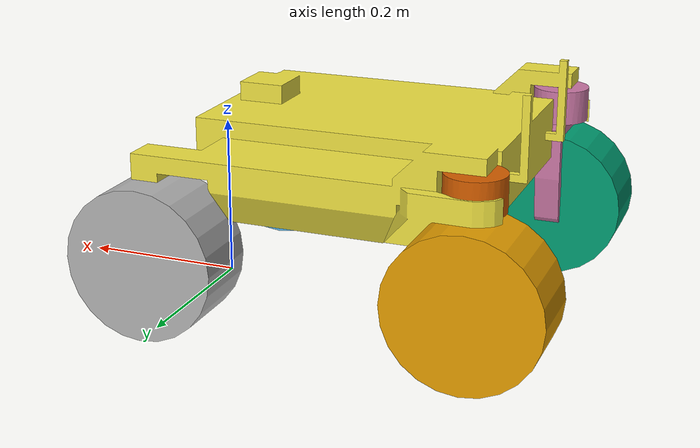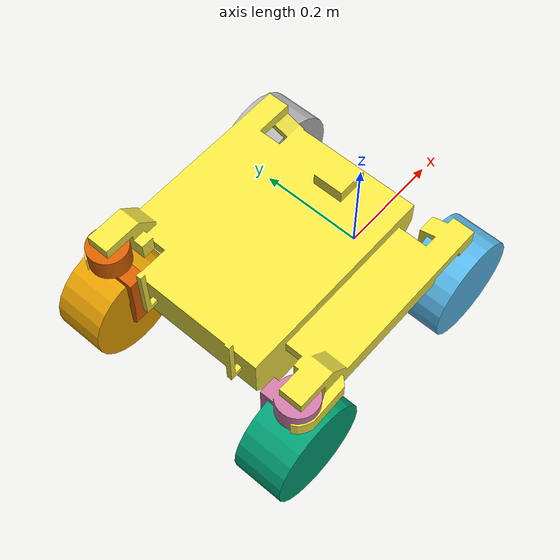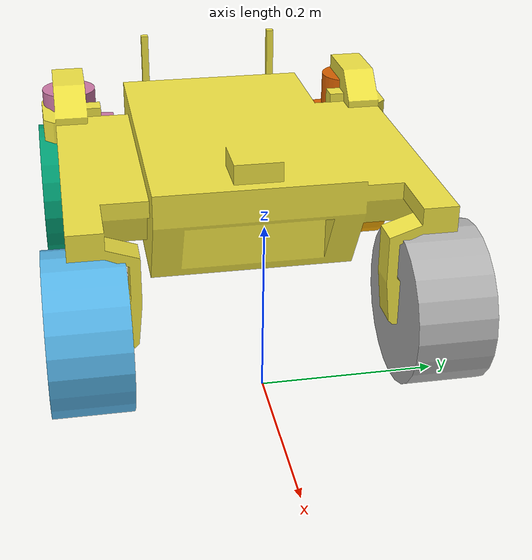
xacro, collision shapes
<?xml version="1.0"?>
<robot xmlns:xacro="http://ros.org/wiki/xacro"
       name="raph_sim">

  <xacro:arg name="fixed" default="false"/>
  <xacro:arg name="robot_ns" default=""/>

  <xacro:include filename="$(find raph_description)/urdf/raph_macros.xacro"/>

  <xacro:raph_sim robot_ns="$(arg robot_ns)"
                 fixed="$(arg fixed)"/>

</robot>

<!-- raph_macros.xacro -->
<robot xmlns:xacro="http://www.ros.org/wiki/xacro">

  <xacro:include filename="$(find raph_description)/urdf/include/oak_macro.xacro"/>
  <xacro:include filename="$(find raph_description)/urdf/include/laser_macro.xacro"/>

  <xacro:macro name="raph"
               params="footprint_link:=true
                       link_prefix:=''
                       joint_prefix:=''
                       imu_translation:='-0.128 0 -0.0393'">
    <!--TODO specify accurate imu translation-->

    <xacro:oak_camera parent="${link_prefix}base_link" base_frame="oak_base_frame" namespace="${link_prefix}">
      <origin xyz="-0.05642 0.0 -0.076218" rpy="0 0 0" />
    </xacro:oak_camera>

    <xacro:rplidar_s3 parent="${link_prefix}base_link" namespace="${link_prefix}">
      <origin xyz="-0.062106 0.0 0.011588" />
    </xacro:rplidar_s3>

    <xacro:macro name="servo_link" params="name">
      <link name="${link_prefix}servo_${name}_link">
        <inertial>
          <mass value="0.055"/>
          <origin xyz="0 0 0"/>
          <inertia
            ixx="0.000001" ixy="0.0" ixz="0.0"
            iyy="0.000001" iyz="0.0"
            izz="0.000001"/>
        </inertial>
        <visual>
          <origin xyz="0 0 0" rpy="0 0 ${pi/2}"/>
          <geometry>
            <mesh filename="package://raph_description/models/servo.dae"/>
          </geometry>
        </visual>
        <collision>
          <origin xyz="0 0 0" rpy="0 0 0"/>
          <geometry>
            <mesh filename="package://raph_description/models/servo_outline.stl"/>
          </geometry>
        </collision>
      </link>
    </xacro:macro>

    <xacro:macro name="wheel_link" params="name">
      <link name="${link_prefix}wheel_${name}_link">
        <inertial>
          <mass value="0.5"/>
          <origin xyz="0 0 0"/>
          <inertia
            ixx="0.002079" ixy="0.0" ixz="0.0"
            iyy="0.002079" iyz="0.0"
            izz="0.004158"/>
        </inertial>
        <visual>
          <origin xyz="0 0 0" rpy="0 0 ${pi/2}"/>
          <geometry>
            <mesh filename="package://raph_description/models/wheel.dae"/>
          </geometry>
        </visual>
        <collision>
          <origin xyz="0 0 0" rpy="${pi/2} 0 0"/>
          <geometry>
            <cylinder radius="0.091" length="0.088"/>
          </geometry>
        </collision>
      </link>
    </xacro:macro>

    <!-- LINKS -->
    <xacro:if value="${footprint_link}">
      <link name="${link_prefix}base_footprint"/>
    </xacro:if>

    <link name="${link_prefix}base_link">
      <inertial>
        <mass value="3.0"/>
        <origin xyz="-0.019662 0.011643 -0.031802"/>
        <inertia
          ixx="0.02" ixy="0.001177" ixz="-0.0008871"
          iyy="0.02" iyz="0.0002226"
          izz="0.03"/>
      </inertial>
      <visual>
        <origin xyz="-0.074211 0 -0.031076" rpy="0 0 ${pi/2}"/>
        <geometry>
          <mesh filename="package://raph_description/models/raph_base_link.dae"/>
        </geometry>
      </visual>
      <collision>
        <origin xyz="0 0 -0.031076" rpy="0 0 0"/>
        <geometry>
          <mesh filename="package://raph_description/models/raph_outline.stl"/>
        </geometry>
      </collision>
    </link>

    <link name="${link_prefix}mounting_plate_frame"/>

    <xacro:servo_link name="l"/>
    <xacro:servo_link name="r"/>

    <xacro:wheel_link name="fl"/>
    <xacro:wheel_link name="rl"/>
    <xacro:wheel_link name="fr"/>
    <xacro:wheel_link name="rr"/>

    <link name="${link_prefix}imu_frame"/>

    <!-- JOINTS -->

    <xacro:if value="${footprint_link}">
      <joint name="${joint_prefix}base_joint" type="fixed">
        <origin xyz="0 0 0.235756" rpy="0 0 0"/>
        <parent link="${link_prefix}base_footprint"/>
        <child link="${link_prefix}base_link"/>
      </joint>
    </xacro:if>

    <joint name="${joint_prefix}servo_l_joint" type="revolute">
      <origin xyz="-0.37943 0.1899 -0.022433" rpy="0 0 0"/>
      <parent link="${link_prefix}base_link"/>
      <child link="${link_prefix}servo_l_link"/>
      <axis xyz="0 0 -1"/>
      <limit effort="100.0" lower="-1.5708" upper="1.5708" velocity="100.0"/>
    </joint>

    <joint name="${joint_prefix}servo_r_joint" type="revolute">
      <origin xyz="-0.37943 -0.1899 -0.022433" rpy="0 0 ${pi}"/>
      <parent link="${link_prefix}base_link"/>
      <child link="${link_prefix}servo_r_link"/>
      <axis xyz="0 0 -1"/>
      <limit effort="100.0" lower="-1.5708" upper="1.5708" velocity="100.0"/>
    </joint>

    <joint name="${joint_prefix}wheel_fl_joint" type="continuous">
      <origin xyz="0 0.19402 -0.144756" rpy="0 0 0"/>
      <parent link="${link_prefix}base_link"/>
      <child link="${link_prefix}wheel_fl_link"/>
      <axis xyz="0 1 0"/>
      <limit effort="2.0" velocity="6.0"/>
      <dynamics friction="0.5" damping="0.2"/>
    </joint>

    <joint name="${joint_prefix}wheel_rl_joint" type="continuous">
      <origin xyz="0 0 -0.12392" rpy="0 0 0"/>
      <parent link="${link_prefix}servo_l_link"/>
      <child link="${link_prefix}wheel_rl_link"/>
      <axis xyz="0 1 0"/>
      <limit effort="2.0" velocity="6.0"/>
      <dynamics friction="0.5" damping="0.2"/>
    </joint>

    <joint name="${joint_prefix}wheel_fr_joint" type="continuous">
      <origin xyz="0 -0.19402 -0.144756" rpy="0 0 ${pi}"/>
      <parent link="${link_prefix}base_link"/>
      <child link="${link_prefix}wheel_fr_link"/>
      <axis xyz="0 -1 0"/>
      <limit effort="2.0" velocity="6.0"/>
      <dynamics friction="0.5" damping="0.2"/>
    </joint>

    <joint name="${joint_prefix}wheel_rr_joint" type="continuous">
      <origin xyz="0 0 -0.12392" rpy="0 0 0"/>
      <parent link="${link_prefix}servo_r_link"/>
      <child link="${link_prefix}wheel_rr_link"/>
      <axis xyz="0 -1 0"/>
      <limit effort="2.0" velocity="6.0"/>
      <dynamics friction="0.5" damping="0.2"/>
    </joint>

    <joint name="${joint_prefix}imu_joint" type="fixed">
      <origin xyz="${imu_translation}" rpy="0 0 0"/>
      <parent link="${link_prefix}base_link"/>
      <child link="${link_prefix}imu_frame"/>
    </joint>

    <joint name="${joint_prefix}mounting_plate_joint" type="fixed">
      <origin xyz="-0.216822 0 0" rpy="0 0 0"/>
      <parent link="${link_prefix}base_link"/>
      <child link="${link_prefix}mounting_plate_frame"/>
    </joint>

  </xacro:macro>

  <!-- RAPH GAZEBO -->

  <xacro:macro name="raph_gazebo"
               params="robot_ns:=''">

    <xacro:property name="link_prefix" value=""/>
    <xacro:property name="joint_prefix" value=""/>
    <xacro:if value="${robot_ns != '' and robot_ns != '/'}">
      <xacro:property name="link_prefix" value="${robot_ns}/"/>
      <xacro:property name="joint_prefix" value="${robot_ns}/"/>
    </xacro:if>

    <!-- base ODE properties -->
    <gazebo reference="${link_prefix}base_footprint">
      <collision>
        <surface>
          <friction>
            <ode>
              <mu>0.3</mu>
              <mu2>0.3</mu2>
            </ode>
            <bullet>
              <friction>0.3</friction>
              <friction2>0.3</friction2>
              <rolling_friction>0.1</rolling_friction>
            </bullet>
          </friction>
        </surface>
      </collision>
    </gazebo>

    <gazebo reference="${link_prefix}base_link">
      <collision>
        <surface>
          <friction>
            <ode>
              <mu>0.3</mu>
              <mu2>0.3</mu2>
            </ode>
            <bullet>
              <friction>0.3</friction>
              <friction2>0.3</friction2>
              <rolling_friction>0.1</rolling_friction>
            </bullet>
          </friction>
        </surface>
      </collision>
    </gazebo>

    <!-- servo ODE properties -->
    <gazebo reference="${link_prefix}servo_l_link">
      <collision>
        <surface>
          <friction>
            <ode>
              <mu>0.3</mu>
              <mu2>0.3</mu2>
            </ode>
            <bullet>
              <friction>0.3</friction>
              <friction2>0.3</friction2>
              <rolling_friction>0.1</rolling_friction>
            </bullet>
          </friction>
        </surface>
      </collision>
    </gazebo>

    <gazebo reference="${link_prefix}servo_r_link">
      <collision>
        <surface>
          <friction>
            <ode>
              <mu>0.3</mu>
              <mu2>0.3</mu2>
            </ode>
            <bullet>
              <friction>0.3</friction>
              <friction2>0.3</friction2>
              <rolling_friction>0.1</rolling_friction>
            </bullet>
          </friction>
        </surface>
      </collision>
    </gazebo>

    <!-- wheel ODE properties -->
    <gazebo reference="${link_prefix}wheel_fl_link">
      <collision>
        <surface>
          <friction>
            <ode>
              <mu>2.0</mu>
              <mu2>2.0</mu2>
              <slip1>0.01</slip1>
              <slip2>0.01</slip2>
            </ode>
            <bullet>
              <friction>2.0</friction>
              <friction2>2.0</friction2>
              <rolling_friction>0.2</rolling_friction>
            </bullet>
          </friction>
        </surface>
      </collision>
    </gazebo>

    <gazebo reference="${link_prefix}wheel_fr_link">
      <collision>
        <surface>
          <friction>
            <ode>
              <mu>2.0</mu>
              <mu2>2.0</mu2>
              <slip1>0.01</slip1>
              <slip2>0.01</slip2>
            </ode>
            <bullet>
              <friction>2.0</friction>
              <friction2>2.0</friction2>
              <rolling_friction>0.2</rolling_friction>
            </bullet>
          </friction>
        </surface>
      </collision>
    </gazebo>

    <gazebo reference="${link_prefix}wheel_rl_link">
      <collision>
        <surface>
          <friction>
            <ode>
              <mu>2.0</mu>
              <mu2>2.0</mu2>
              <slip1>0.01</slip1>
              <slip2>0.01</slip2>
            </ode>
            <bullet>
              <friction>2.0</friction>
              <friction2>2.0</friction2>
              <rolling_friction>0.2</rolling_friction>
            </bullet>
          </friction>
        </surface>
      </collision>
    </gazebo>

    <gazebo reference="${link_prefix}wheel_rr_link">
      <collision>
        <surface>
          <friction>
            <ode>
              <mu>2.0</mu>
              <mu2>2.0</mu2>
              <slip1>0.01</slip1>
              <slip2>0.01</slip2>
            </ode>
            <bullet>
              <friction>2.0</friction>
              <friction2>2.0</friction2>
              <rolling_friction>0.2</rolling_friction>
            </bullet>
          </friction>
        </surface>
      </collision>
    </gazebo>

    <!-- Joint state publisher -->
    <gazebo>
      <plugin
        filename="libgz-sim-joint-state-publisher-system.so"
        name="gz::sim::systems::JointStatePublisher">
        <topic>${link_prefix}joint_states</topic>
      </plugin>
    </gazebo>

    <!-- TODO adjust sensor configurations -->
    <!-- RPLidar S3 sensor -->
    <gazebo reference="laser_frame">
      <sensor name="rplidar_s3" type="gpu_lidar">
        <visualize>true</visualize>
        <update_rate>15</update_rate>
        <lidar>
          <scan>
            <horizontal>
              <samples>720</samples>
              <resolution>1</resolution>
              <min_angle>-3.14159</min_angle>
              <max_angle>3.14159</max_angle>
            </horizontal>
          </scan>
          <range>
            <min>0.10</min>
            <max>25.0</max>
            <resolution>0.01</resolution>
          </range>
          <noise>
            <type>gaussian</type>
            <mean>0.0</mean>
            <stddev>0.01</stddev>
          </noise>
        </lidar>
        <topic>${link_prefix}scan_raw</topic>
        <gz_frame_id>${link_prefix}laser_frame</gz_frame_id>
      </sensor>
    </gazebo>

    <!-- OAK-D Pro W RGB camera -->
    <gazebo reference="${link_prefix}oak_rgb_camera_frame">
      <sensor name="oak_rgb_camera" type="camera">
        <camera name="oak_rgb">
          <horizontal_fov>1.204</horizontal_fov>
          <image>
            <width>1920</width>
            <height>1080</height>
            <format>R8G8B8</format>
          </image>
          <clip>
            <near>0.1</near>
            <far>100</far>
          </clip>
          <noise>
            <type>gaussian</type>
            <mean>0.0</mean>
            <stddev>0.007</stddev>
          </noise>
        </camera>
        <always_on>1</always_on>
        <update_rate>30</update_rate>
        <visualize>true</visualize>
        <topic>${link_prefix}oak/rgb/image_raw</topic>
        <gz_frame_id>${link_prefix}oak_rgb_camera_optical_frame</gz_frame_id>
      </sensor>
    </gazebo>

    <!-- OAK-D Pro W Depth camera -->
    <gazebo reference="${link_prefix}oak_rgb_camera_frame">
      <sensor name="oak_depth_camera" type="depth_camera">
        <camera name="oak_depth">
          <horizontal_fov>1.204</horizontal_fov>
          <image>
            <width>1280</width>
            <height>720</height>
            <format>R_FLOAT32</format>
          </image>
          <clip>
            <near>0.1</near>
            <far>10.0</far>
          </clip>
          <noise>
            <type>gaussian</type>
            <mean>0.0</mean>
            <stddev>0.01</stddev>
          </noise>
        </camera>
        <always_on>1</always_on>
        <update_rate>15</update_rate>
        <visualize>true</visualize>
        <topic>${link_prefix}oak/depth/image_raw</topic>
        <gz_frame_id>${link_prefix}oak_right_camera_frame</gz_frame_id>
      </sensor>
    </gazebo>

    <!-- IMU sensor -->
    <gazebo reference="${link_prefix}imu_frame">
      <sensor type="imu" name="raph_imu_sensor">
        <update_rate>100</update_rate>
        <visualize>true</visualize>
        <topic>${link_prefix}controller/imu</topic>
        <always_on>1</always_on>
        <gz_frame_id>${link_prefix}imu_frame</gz_frame_id>
      </sensor>
    </gazebo>

    <gazebo>
      <plugin
        filename="libraph_gz_steering_system.so"
        name="raph_gz_plugins::RaphSteeringSystem">
        <robot_namespace>${link_prefix}</robot_namespace>
        <wheelbase>0.378</wheelbase>
        <max_steering_angle>1.08</max_steering_angle>
        <turn_in_place_angle>1.10082</turn_in_place_angle>
        <max_wheel_speed>1.52</max_wheel_speed>
        <track_width>0.384</track_width>
        <wheel_radius>0.08</wheel_radius>

        <left_steering_joint>${joint_prefix}servo_l_joint</left_steering_joint>
        <right_steering_joint>${joint_prefix}servo_r_joint</right_steering_joint>
        <left_steering_wheel_joint>${joint_prefix}wheel_rl_joint</left_steering_wheel_joint>
        <right_steering_wheel_joint>${joint_prefix}wheel_rr_joint</right_steering_wheel_joint>
        <left_drive_wheel_joint>${joint_prefix}wheel_fl_joint</left_drive_wheel_joint>
        <right_drive_wheel_joint>${joint_prefix}wheel_fr_joint</right_drive_wheel_joint>

        <left_steering_joint_topic>/${joint_prefix}servo_l_joint/cmd_pos</left_steering_joint_topic>
        <right_steering_joint_topic>/${joint_prefix}servo_r_joint/cmd_pos</right_steering_joint_topic>
        <left_steering_wheel_topic>/${joint_prefix}wheel_rl_joint/cmd_vel</left_steering_wheel_topic>
        <right_steering_wheel_topic>/${joint_prefix}wheel_rr_joint/cmd_vel</right_steering_wheel_topic>
        <left_drive_wheel_topic>/${joint_prefix}wheel_fl_joint/cmd_vel</left_drive_wheel_topic>
        <right_drive_wheel_topic>/${joint_prefix}wheel_fr_joint/cmd_vel</right_drive_wheel_topic>
      </plugin>
    </gazebo>

    <gazebo>
      <plugin filename="gz-sim-joint-position-controller-system" name="gz::sim::systems::JointPositionController">
        <joint_name>${joint_prefix}servo_l_joint</joint_name>
        <topic>/${joint_prefix}servo_l_joint/cmd_pos</topic>
        <use_velocity_commands>true</use_velocity_commands>
        <cmd_max>3.0</cmd_max>
        <cmd_min>-3.0</cmd_min>
      </plugin>
    </gazebo>

    <gazebo>
      <plugin filename="gz-sim-joint-position-controller-system" name="gz::sim::systems::JointPositionController">
        <joint_name>${joint_prefix}servo_r_joint</joint_name>
        <topic>/${joint_prefix}servo_r_joint/cmd_pos</topic>

        <use_velocity_commands>true</use_velocity_commands>
        <cmd_max>3.0</cmd_max>
        <cmd_min>-3.0</cmd_min>
      </plugin>
    </gazebo>

    <gazebo>
      <plugin filename="gz-sim-joint-controller-system" name="gz::sim::systems::JointController">
        <joint_name>${joint_prefix}wheel_rl_joint</joint_name>
        <topic>/${joint_prefix}wheel_rl_joint/cmd_vel</topic>
      </plugin>
    </gazebo>

    <gazebo>
      <plugin filename="gz-sim-joint-controller-system" name="gz::sim::systems::JointController">
        <joint_name>${joint_prefix}wheel_rr_joint</joint_name>
        <topic>/${joint_prefix}wheel_rr_joint/cmd_vel</topic>
      </plugin>
    </gazebo>

    <gazebo>
      <plugin filename="gz-sim-joint-controller-system" name="gz::sim::systems::JointController">
        <joint_name>${joint_prefix}wheel_fl_joint</joint_name>
        <topic>/${joint_prefix}wheel_fl_joint/cmd_vel</topic>
      </plugin>
    </gazebo>

    <gazebo>
      <plugin filename="gz-sim-joint-controller-system" name="gz::sim::systems::JointController">
        <joint_name>${joint_prefix}wheel_fr_joint</joint_name>
        <topic>/${joint_prefix}wheel_fr_joint/cmd_vel</topic>
      </plugin>
    </gazebo>

    <gazebo>
      <plugin filename="libraph_gz_lidar_filter_plugin.so" name="raph_gz_plugins::LidarAngleFilter">
        <input_topic>${link_prefix}scan_raw</input_topic>
        <output_topic>${link_prefix}scan</output_topic>
        <filter_ranges>
          <range>
            <min>2.45582</min>
            <max>2.6529</max>
          </range>
          <range>
            <min>2.87979</min>
            <max>2.9147</max>
          </range>
          <range>
            <min>-2.9147</min>
            <max>-2.87979</max>
          </range>
          <range>
            <min>-2.6529</min>
            <max>-2.45582</max>
          </range>
        </filter_ranges>
      </plugin>
    </gazebo>

    <!--Odometry publisher-->
    <gazebo>
      <plugin
        filename="gz-sim-odometry-publisher-system"
        name="gz::sim::systems::OdometryPublisher">
        <odom_frame>${link_prefix}odom</odom_frame>
        <robot_base_frame>${link_prefix}base_footprint</robot_base_frame>
        <odom_publish_frequency>50</odom_publish_frequency>
        <odom_topic>${link_prefix}controller/odom</odom_topic>
        <tf_topic>/tf</tf_topic>
        <gaussian_noise>0.001</gaussian_noise>
      </plugin>
    </gazebo>

  </xacro:macro>

  <xacro:macro name="raph_sim"
               params="fixed:=false
                       robot_ns:=''">

    <xacro:property name="link_prefix" value=""/>
    <xacro:property name="joint_prefix" value=""/>
    <xacro:if value="${robot_ns != '' and robot_ns != '/'}">
      <xacro:property name="link_prefix" value="${robot_ns}/"/>
      <xacro:property name="joint_prefix" value="${robot_ns}/"/>
    </xacro:if>

    <xacro:raph link_prefix="${link_prefix}" joint_prefix="${joint_prefix}"/>

    <xacro:raph_gazebo robot_ns="${robot_ns}"/>

    <xacro:if value="${fixed}">
      <link name="world"/>
      <joint name="fixed" type="fixed">
        <parent link="world"/>
        <child link="${link_prefix}base_footprint"/>
        <origin xyz="0.0 0.0 1.0"/>
      </joint>
    </xacro:if>

  </xacro:macro>

</robot>

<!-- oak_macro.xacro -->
<robot name="depthai_camera" xmlns:xacro="http://ros.org/wiki/xacro">

  <xacro:macro name="oak_camera"
    params="parent base_frame *origin r:=0.3 g:=0.3 b:=0.3 a:=0.8 namespace:=''">

    <xacro:property name="baseline" value="0.075" />

    <!-- base_link of the sensor-->
    <link name="${namespace}${base_frame}"/>

    <joint name="${namespace}oak_center_joint" type="fixed">
      <parent link="${parent}"/>
      <child link="${namespace}${base_frame}"/>
      <xacro:insert_block name="origin" />
    </joint>

    <!-- IMU -->
    <link name="${namespace}oak_imu_frame" />
    <joint name="${namespace}oak_imu_joint" type="fixed">
      <parent link="${namespace}${base_frame}"/>
      <child link="${namespace}oak_imu_frame"/>
      <origin xyz="0.0 -0.015 -0.013662" rpy="0.0 -${pi/2} 0.0" />
    </joint>

    <!-- RGB Camera -->
    <link name="${namespace}oak_rgb_camera_frame" />

    <joint name="${namespace}oak_rgb_camera_joint" type="fixed">
      <parent link="${namespace}${base_frame}"/>
      <child link="${namespace}oak_rgb_camera_frame"/>
      <origin xyz="0 0 0" rpy="0 0 0" />
    </joint>

    <link name="${namespace}oak_rgb_camera_optical_frame"/>

    <joint name="${namespace}oak_rgb_camera_optical_joint" type="fixed">
      <origin xyz="0 0 0" rpy="-${pi/2} 0.0 -${pi/2}"/>
      <parent link="${namespace}oak_rgb_camera_frame"/>
      <child link="${namespace}oak_rgb_camera_optical_frame"/>
    </joint>

    <!-- Left Camera -->
    <link name="${namespace}oak_left_camera_frame" />

    <joint name="${namespace}oak_left_camera_joint" type="fixed">
      <parent link="${namespace}${base_frame}"/>
      <child link="${namespace}oak_left_camera_frame"/>
      <origin xyz="0 ${baseline/2} 0" rpy="0 0 0" />
    </joint>

    <link name="${namespace}oak_left_camera_optical_frame"/>

    <joint name="${namespace}oak_left_camera_optical_joint" type="fixed">
      <origin xyz="0 0 0" rpy="-${pi/2} 0.0 -${pi/2}"/>
      <parent link="${namespace}oak_left_camera_frame"/>
      <child link="${namespace}oak_left_camera_optical_frame"/>
    </joint>

    <link name="${namespace}oak_stereo_camera_optical_frame" />
    <joint name="${namespace}oak_stereo_camera_optical_joint" type="fixed">
      <origin xyz="0 0 0" rpy="${pi/2} 0.0 ${pi/2}"/>
      <parent link="${namespace}oak_left_camera_frame"/>
      <child link="${namespace}oak_stereo_camera_optical_frame"/>
    </joint>

    <!-- right Camera -->
    <link name="${namespace}oak_right_camera_frame" />

    <joint name="${namespace}oak_right_camera_joint" type="fixed">
      <parent link="${namespace}${base_frame}"/>
      <child link="${namespace}oak_right_camera_frame"/>
      <origin xyz="0 -${baseline/2} 0" rpy="0 0 0" />
    </joint>

    <link name="${namespace}oak_right_camera_optical_frame"/>

    <joint name="${namespace}oak_right_camera_optical_joint" type="fixed">
      <origin xyz="0 0 0" rpy="-${pi/2} 0.0 -${pi/2}"/>
      <parent link="${namespace}oak_right_camera_frame"/>
      <child link="${namespace}oak_right_camera_optical_frame"/>
    </joint>

  </xacro:macro>

</robot>

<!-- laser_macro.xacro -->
<robot name="sp3lidar" xmlns:xacro="http://ros.org/wiki/xacro">
  <xacro:macro name="rplidar_s3"
    params="parent *origin namespace:=''">
    <link name="${namespace}laser_frame"/>

    <joint name="${namespace}laser_joint" type="fixed">
      <xacro:insert_block name="origin"/>
      <parent link="${parent}"/>
      <child link="${namespace}laser_frame"/>
    </joint>
  </xacro:macro>
</robot>
